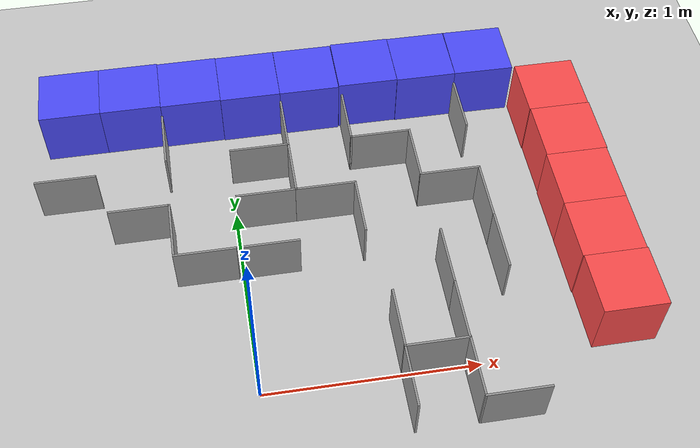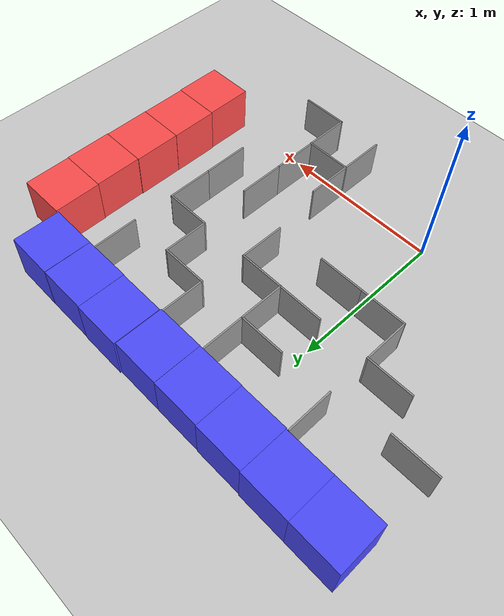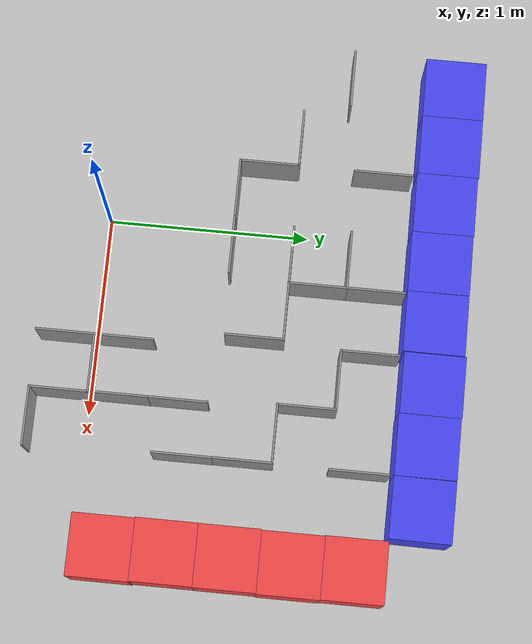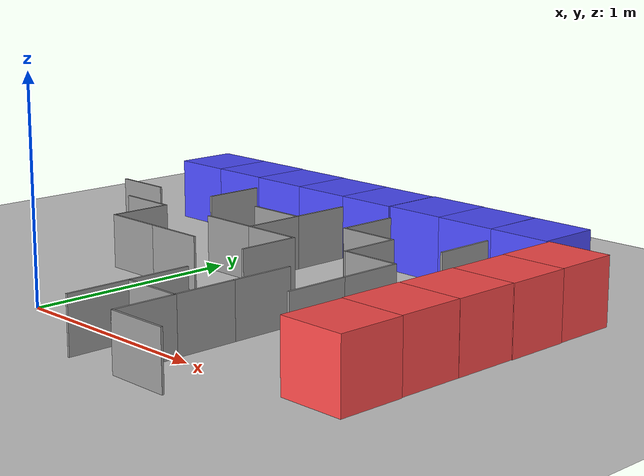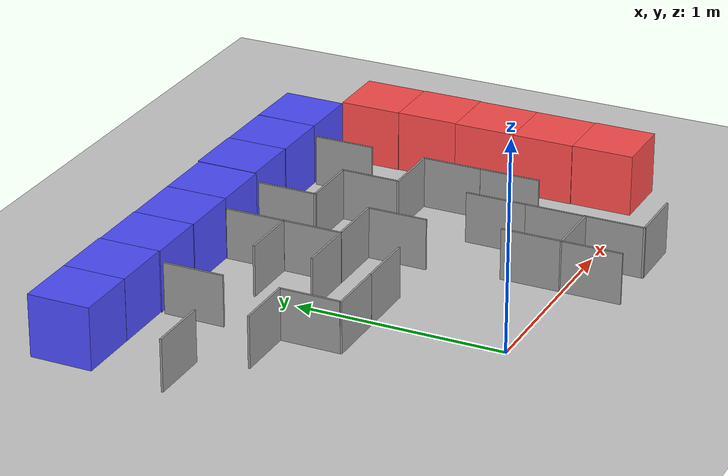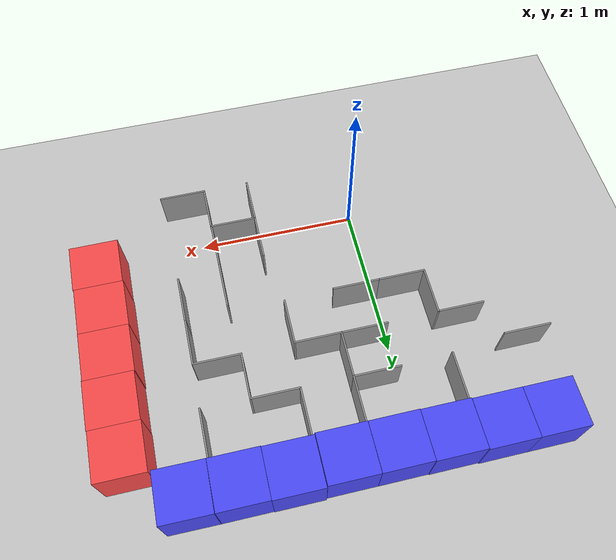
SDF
<sdf version="1.6">
 <world name="default">
  <model name="ground_plane">
   <static>1</static>
   <link name="link">
    <collision name="collision">
     <geometry><plane><normal>0 0 1</normal><size>100 100</size></plane></geometry>
     <surface><friction><ode><mu>100</mu><mu2>50</mu2></ode></friction></surface>
    </collision>
    <visual name="visual">
     <cast_shadows>0</cast_shadows>
     <geometry><plane><normal>0 0 1</normal><size>100 100</size></plane></geometry>
     <material>
      <script><uri>file://media/materials/scripts/gazebo.material</uri><name>Gazebo/Grey</name></script>
     </material>
    </visual>
   </link>
  </model>
  <model name="Box_Red">
   <link name="link_0">
    <inertial>
     <mass>1</mass>
     <inertia>
      <ixx>0.166667</ixx>
      <ixy>0</ixy>
      <ixz>0</ixz>
      <iyy>0.166667</iyy>
      <iyz>0</iyz>
      <izz>0.166667</izz>
     </inertia>
    </inertial>
    <visual name="visual">
     <geometry><box><size>0.3 0.3 0.3</size></box></geometry>
     <material>
      <lighting>1</lighting>
      <script><uri>file://media/materials/scripts/gazebo.material</uri><name>Gazebo/Grey</name></script>
      <ambient>1 0.3 0.3 1</ambient>
      <diffuse>0.7 0.7 0.7 1</diffuse>
      <specular>0.01 0.01 0.01 1</specular>
      <emissive>0 0 0 1</emissive>
      <shader type="vertex"><normal_map>__default__</normal_map></shader>
     </material>
    </visual>
    <collision name="collision">
     <geometry><box><size>0.3 0.3 0.3</size></box></geometry>
     <surface>
      <friction>
       <ode><mu>1</mu><mu2>1</mu2><fdir1>0 0 0</fdir1><slip1>0</slip1><slip2>0</slip2></ode>
       <torsional>
        <coefficient>1</coefficient>
        <patch_radius>0</patch_radius>
        <surface_radius>0</surface_radius>
        <use_patch_radius>1</use_patch_radius>
        <ode><slip>0</slip></ode>
       </torsional>
      </friction>
      <bounce><restitution_coefficient>0</restitution_coefficient><threshold>1e+06</threshold></bounce>
      <contact>
       <collide_without_contact>0</collide_without_contact>
       <collide_without_contact_bitmask>1</collide_without_contact_bitmask>
       <collide_bitmask>1</collide_bitmask>
       <ode>
        <soft_cfm>0</soft_cfm>
        <soft_erp>0.2</soft_erp>
        <kp>1e+13</kp>
        <kd>1</kd>
        <max_vel>0.01</max_vel>
        <min_depth>0</min_depth>
       </ode>
       <bullet>
        <split_impulse>1</split_impulse>
        <split_impulse_penetration_threshold>-0.01</split_impulse_penetration_threshold>
        <soft_cfm>0</soft_cfm>
        <soft_erp>0.2</soft_erp>
        <kp>1e+13</kp>
        <kd>1</kd>
       </bullet>
      </contact>
     </surface>
    </collision>
   </link>
   <static>0</static>
   <pose>1.65631 1.36035 0.15 0 -0 0.000209</pose>
  </model>
  <model name="Box_Red_clone">
   <link name="link_0">
    <inertial>
     <mass>1</mass>
     <inertia>
      <ixx>0.166667</ixx>
      <ixy>0</ixy>
      <ixz>0</ixz>
      <iyy>0.166667</iyy>
      <iyz>0</iyz>
      <izz>0.166667</izz>
     </inertia>
    </inertial>
    <visual name="visual">
     <geometry><box><size>0.3 0.3 0.3</size></box></geometry>
     <material>
      <lighting>1</lighting>
      <script><uri>file://media/materials/scripts/gazebo.material</uri><name>Gazebo/Grey</name></script>
      <ambient>1 0.3 0.3 1</ambient>
      <diffuse>0.7 0.7 0.7 1</diffuse>
      <specular>0.01 0.01 0.01 1</specular>
      <emissive>0 0 0 1</emissive>
      <shader type="vertex"><normal_map>__default__</normal_map></shader>
     </material>
    </visual>
    <collision name="collision">
     <geometry><box><size>0.3 0.3 0.3</size></box></geometry>
     <surface>
      <friction>
       <ode><mu>1</mu><mu2>1</mu2><fdir1>0 0 0</fdir1><slip1>0</slip1><slip2>0</slip2></ode>
       <torsional>
        <coefficient>1</coefficient>
        <patch_radius>0</patch_radius>
        <surface_radius>0</surface_radius>
        <use_patch_radius>1</use_patch_radius>
        <ode><slip>0</slip></ode>
       </torsional>
      </friction>
      <bounce><restitution_coefficient>0</restitution_coefficient><threshold>1e+06</threshold></bounce>
      <contact>
       <collide_without_contact>0</collide_without_contact>
       <collide_without_contact_bitmask>1</collide_without_contact_bitmask>
       <collide_bitmask>1</collide_bitmask>
       <ode>
        <soft_cfm>0</soft_cfm>
        <soft_erp>0.2</soft_erp>
        <kp>1e+13</kp>
        <kd>1</kd>
        <max_vel>0.01</max_vel>
        <min_depth>0</min_depth>
       </ode>
       <bullet>
        <split_impulse>1</split_impulse>
        <split_impulse_penetration_threshold>-0.01</split_impulse_penetration_threshold>
        <soft_cfm>0</soft_cfm>
        <soft_erp>0.2</soft_erp>
        <kp>1e+13</kp>
        <kd>1</kd>
       </bullet>
      </contact>
     </surface>
    </collision>
   </link>
   <static>0</static>
   <pose>1.6595 1.06034 0.15 0 -0 0.000177</pose>
  </model>
  <model name="Box_Red_clone_0">
   <link name="link_0">
    <inertial>
     <mass>1</mass>
     <inertia>
      <ixx>0.166667</ixx>
      <ixy>0</ixy>
      <ixz>0</ixz>
      <iyy>0.166667</iyy>
      <iyz>0</iyz>
      <izz>0.166667</izz>
     </inertia>
    </inertial>
    <visual name="visual">
     <geometry><box><size>0.3 0.3 0.3</size></box></geometry>
     <material>
      <lighting>1</lighting>
      <script><uri>file://media/materials/scripts/gazebo.material</uri><name>Gazebo/Grey</name></script>
      <ambient>1 0.3 0.3 1</ambient>
      <diffuse>0.7 0.7 0.7 1</diffuse>
      <specular>0.01 0.01 0.01 1</specular>
      <emissive>0 0 0 1</emissive>
      <shader type="vertex"><normal_map>__default__</normal_map></shader>
     </material>
    </visual>
    <collision name="collision">
     <geometry><box><size>0.3 0.3 0.3</size></box></geometry>
     <surface>
      <friction>
       <ode><mu>1</mu><mu2>1</mu2><fdir1>0 0 0</fdir1><slip1>0</slip1><slip2>0</slip2></ode>
       <torsional>
        <coefficient>1</coefficient>
        <patch_radius>0</patch_radius>
        <surface_radius>0</surface_radius>
        <use_patch_radius>1</use_patch_radius>
        <ode><slip>0</slip></ode>
       </torsional>
      </friction>
      <bounce><restitution_coefficient>0</restitution_coefficient><threshold>1e+06</threshold></bounce>
      <contact>
       <collide_without_contact>0</collide_without_contact>
       <collide_without_contact_bitmask>1</collide_without_contact_bitmask>
       <collide_bitmask>1</collide_bitmask>
       <ode>
        <soft_cfm>0</soft_cfm>
        <soft_erp>0.2</soft_erp>
        <kp>1e+13</kp>
        <kd>1</kd>
        <max_vel>0.01</max_vel>
        <min_depth>0</min_depth>
       </ode>
       <bullet>
        <split_impulse>1</split_impulse>
        <split_impulse_penetration_threshold>-0.01</split_impulse_penetration_threshold>
        <soft_cfm>0</soft_cfm>
        <soft_erp>0.2</soft_erp>
        <kp>1e+13</kp>
        <kd>1</kd>
       </bullet>
      </contact>
     </surface>
    </collision>
   </link>
   <static>0</static>
   <pose>1.65603 0.760319 0.15 0 -0 0.000183</pose>
  </model>
  <model name="Box_Red_clone_1">
   <link name="link_0">
    <inertial>
     <mass>1</mass>
     <inertia>
      <ixx>0.166667</ixx>
      <ixy>0</ixy>
      <ixz>0</ixz>
      <iyy>0.166667</iyy>
      <iyz>0</iyz>
      <izz>0.166667</izz>
     </inertia>
    </inertial>
    <visual name="visual">
     <geometry><box><size>0.3 0.3 0.3</size></box></geometry>
     <material>
      <lighting>1</lighting>
      <script><uri>file://media/materials/scripts/gazebo.material</uri><name>Gazebo/Grey</name></script>
      <ambient>1 0.3 0.3 1</ambient>
      <diffuse>0.7 0.7 0.7 1</diffuse>
      <specular>0.01 0.01 0.01 1</specular>
      <emissive>0 0 0 1</emissive>
      <shader type="vertex"><normal_map>__default__</normal_map></shader>
     </material>
    </visual>
    <collision name="collision">
     <geometry><box><size>0.3 0.3 0.3</size></box></geometry>
     <surface>
      <friction>
       <ode><mu>1</mu><mu2>1</mu2><fdir1>0 0 0</fdir1><slip1>0</slip1><slip2>0</slip2></ode>
       <torsional>
        <coefficient>1</coefficient>
        <patch_radius>0</patch_radius>
        <surface_radius>0</surface_radius>
        <use_patch_radius>1</use_patch_radius>
        <ode><slip>0</slip></ode>
       </torsional>
      </friction>
      <bounce><restitution_coefficient>0</restitution_coefficient><threshold>1e+06</threshold></bounce>
      <contact>
       <collide_without_contact>0</collide_without_contact>
       <collide_without_contact_bitmask>1</collide_without_contact_bitmask>
       <collide_bitmask>1</collide_bitmask>
       <ode>
        <soft_cfm>0</soft_cfm>
        <soft_erp>0.2</soft_erp>
        <kp>1e+13</kp>
        <kd>1</kd>
        <max_vel>0.01</max_vel>
        <min_depth>0</min_depth>
       </ode>
       <bullet>
        <split_impulse>1</split_impulse>
        <split_impulse_penetration_threshold>-0.01</split_impulse_penetration_threshold>
        <soft_cfm>0</soft_cfm>
        <soft_erp>0.2</soft_erp>
        <kp>1e+13</kp>
        <kd>1</kd>
       </bullet>
      </contact>
     </surface>
    </collision>
   </link>
   <static>0</static>
   <pose>1.65531 0.460313 0.15 0 -0 0.000186</pose>
  </model>
  <model name="Box_Red_clone_2">
   <link name="link_0">
    <inertial>
     <mass>1</mass>
     <inertia>
      <ixx>0.166667</ixx>
      <ixy>0</ixy>
      <ixz>0</ixz>
      <iyy>0.166667</iyy>
      <iyz>0</iyz>
      <izz>0.166667</izz>
     </inertia>
    </inertial>
    <visual name="visual">
     <geometry><box><size>0.3 0.3 0.3</size></box></geometry>
     <material>
      <lighting>1</lighting>
      <script><uri>file://media/materials/scripts/gazebo.material</uri><name>Gazebo/Grey</name></script>
      <ambient>1 0.3 0.3 1</ambient>
      <diffuse>0.7 0.7 0.7 1</diffuse>
      <specular>0.01 0.01 0.01 1</specular>
      <emissive>0 0 0 1</emissive>
      <shader type="vertex"><normal_map>__default__</normal_map></shader>
     </material>
    </visual>
    <collision name="collision">
     <geometry><box><size>0.3 0.3 0.3</size></box></geometry>
     <surface>
      <friction>
       <ode><mu>1</mu><mu2>1</mu2><fdir1>0 0 0</fdir1><slip1>0</slip1><slip2>0</slip2></ode>
       <torsional>
        <coefficient>1</coefficient>
        <patch_radius>0</patch_radius>
        <surface_radius>0</surface_radius>
        <use_patch_radius>1</use_patch_radius>
        <ode><slip>0</slip></ode>
       </torsional>
      </friction>
      <bounce><restitution_coefficient>0</restitution_coefficient><threshold>1e+06</threshold></bounce>
      <contact>
       <collide_without_contact>0</collide_without_contact>
       <collide_without_contact_bitmask>1</collide_without_contact_bitmask>
       <collide_bitmask>1</collide_bitmask>
       <ode>
        <soft_cfm>0</soft_cfm>
        <soft_erp>0.2</soft_erp>
        <kp>1e+13</kp>
        <kd>1</kd>
        <max_vel>0.01</max_vel>
        <min_depth>0</min_depth>
       </ode>
       <bullet>
        <split_impulse>1</split_impulse>
        <split_impulse_penetration_threshold>-0.01</split_impulse_penetration_threshold>
        <soft_cfm>0</soft_cfm>
        <soft_erp>0.2</soft_erp>
        <kp>1e+13</kp>
        <kd>1</kd>
       </bullet>
      </contact>
     </surface>
    </collision>
   </link>
   <static>0</static>
   <pose>1.6595 0.160281 0.15 0 -0 0.000192</pose>
  </model>
  <model name="Box_Blue">
   <link name="link_0">
    <inertial>
     <mass>1</mass>
     <inertia>
      <ixx>0.166667</ixx>
      <ixy>0</ixy>
      <ixz>0</ixz>
      <iyy>0.166667</iyy>
      <iyz>0</iyz>
      <izz>0.166667</izz>
     </inertia>
    </inertial>
    <visual name="visual">
     <geometry><box><size>0.3 0.3 0.3</size></box></geometry>
     <material>
      <lighting>1</lighting>
      <script><uri>file://media/materials/scripts/gazebo.material</uri><name>Gazebo/Grey</name></script>
      <ambient>0.3 0.3 1 1</ambient>
      <diffuse>0.7 0.7 0.7 1</diffuse>
      <specular>0.01 0.01 0.01 1</specular>
      <emissive>0 0 0 1</emissive>
      <shader type="vertex"><normal_map>__default__</normal_map></shader>
     </material>
    </visual>
    <collision name="collision">
     <geometry><box><size>0.3 0.3 0.3</size></box></geometry>
     <surface>
      <friction>
       <ode><mu>1</mu><mu2>1</mu2><fdir1>0 0 0</fdir1><slip1>0</slip1><slip2>0</slip2></ode>
       <torsional>
        <coefficient>1</coefficient>
        <patch_radius>0</patch_radius>
        <surface_radius>0</surface_radius>
        <use_patch_radius>1</use_patch_radius>
        <ode><slip>0</slip></ode>
       </torsional>
      </friction>
      <bounce><restitution_coefficient>0</restitution_coefficient><threshold>1e+06</threshold></bounce>
      <contact>
       <collide_without_contact>0</collide_without_contact>
       <collide_without_contact_bitmask>1</collide_without_contact_bitmask>
       <collide_bitmask>1</collide_bitmask>
       <ode>
        <soft_cfm>0</soft_cfm>
        <soft_erp>0.2</soft_erp>
        <kp>1e+13</kp>
        <kd>1</kd>
        <max_vel>0.01</max_vel>
        <min_depth>0</min_depth>
       </ode>
       <bullet>
        <split_impulse>1</split_impulse>
        <split_impulse_penetration_threshold>-0.01</split_impulse_penetration_threshold>
        <soft_cfm>0</soft_cfm>
        <soft_erp>0.2</soft_erp>
        <kp>1e+13</kp>
        <kd>1</kd>
       </bullet>
      </contact>
     </surface>
    </collision>
   </link>
   <static>0</static>
   <pose>1.34503 1.6566 0.15 0 -0 -0.010007</pose>
  </model>
  <model name="Box_Blue_clone">
   <link name="link_0">
    <inertial>
     <mass>1</mass>
     <inertia>
      <ixx>0.166667</ixx>
      <ixy>0</ixy>
      <ixz>0</ixz>
      <iyy>0.166667</iyy>
      <iyz>0</iyz>
      <izz>0.166667</izz>
     </inertia>
    </inertial>
    <visual name="visual">
     <geometry><box><size>0.3 0.3 0.3</size></box></geometry>
     <material>
      <lighting>1</lighting>
      <script><uri>file://media/materials/scripts/gazebo.material</uri><name>Gazebo/Grey</name></script>
      <ambient>0.3 0.3 1 1</ambient>
      <diffuse>0.7 0.7 0.7 1</diffuse>
      <specular>0.01 0.01 0.01 1</specular>
      <emissive>0 0 0 1</emissive>
      <shader type="vertex"><normal_map>__default__</normal_map></shader>
     </material>
    </visual>
    <collision name="collision">
     <geometry><box><size>0.3 0.3 0.3</size></box></geometry>
     <surface>
      <friction>
       <ode><mu>1</mu><mu2>1</mu2><fdir1>0 0 0</fdir1><slip1>0</slip1><slip2>0</slip2></ode>
       <torsional>
        <coefficient>1</coefficient>
        <patch_radius>0</patch_radius>
        <surface_radius>0</surface_radius>
        <use_patch_radius>1</use_patch_radius>
        <ode><slip>0</slip></ode>
       </torsional>
      </friction>
      <bounce><restitution_coefficient>0</restitution_coefficient><threshold>1e+06</threshold></bounce>
      <contact>
       <collide_without_contact>0</collide_without_contact>
       <collide_without_contact_bitmask>1</collide_without_contact_bitmask>
       <collide_bitmask>1</collide_bitmask>
       <ode>
        <soft_cfm>0</soft_cfm>
        <soft_erp>0.2</soft_erp>
        <kp>1e+13</kp>
        <kd>1</kd>
        <max_vel>0.01</max_vel>
        <min_depth>0</min_depth>
       </ode>
       <bullet>
        <split_impulse>1</split_impulse>
        <split_impulse_penetration_threshold>-0.01</split_impulse_penetration_threshold>
        <soft_cfm>0</soft_cfm>
        <soft_erp>0.2</soft_erp>
        <kp>1e+13</kp>
        <kd>1</kd>
       </bullet>
      </contact>
     </surface>
    </collision>
   </link>
   <static>0</static>
   <pose>1.04383 1.65841 0.15 0 -0 -0.002032</pose>
  </model>
  <model name="Box_Blue_clone_0">
   <link name="link_0">
    <inertial>
     <mass>1</mass>
     <inertia>
      <ixx>0.166667</ixx>
      <ixy>0</ixy>
      <ixz>0</ixz>
      <iyy>0.166667</iyy>
      <iyz>0</iyz>
      <izz>0.166667</izz>
     </inertia>
    </inertial>
    <visual name="visual">
     <geometry><box><size>0.3 0.3 0.3</size></box></geometry>
     <material>
      <lighting>1</lighting>
      <script><uri>file://media/materials/scripts/gazebo.material</uri><name>Gazebo/Grey</name></script>
      <ambient>0.3 0.3 1 1</ambient>
      <diffuse>0.7 0.7 0.7 1</diffuse>
      <specular>0.01 0.01 0.01 1</specular>
      <emissive>0 0 0 1</emissive>
      <shader type="vertex"><normal_map>__default__</normal_map></shader>
     </material>
    </visual>
    <collision name="collision">
     <geometry><box><size>0.3 0.3 0.3</size></box></geometry>
     <surface>
      <friction>
       <ode><mu>1</mu><mu2>1</mu2><fdir1>0 0 0</fdir1><slip1>0</slip1><slip2>0</slip2></ode>
       <torsional>
        <coefficient>1</coefficient>
        <patch_radius>0</patch_radius>
        <surface_radius>0</surface_radius>
        <use_patch_radius>1</use_patch_radius>
        <ode><slip>0</slip></ode>
       </torsional>
      </friction>
      <bounce><restitution_coefficient>0</restitution_coefficient><threshold>1e+06</threshold></bounce>
      <contact>
       <collide_without_contact>0</collide_without_contact>
       <collide_without_contact_bitmask>1</collide_without_contact_bitmask>
       <collide_bitmask>1</collide_bitmask>
       <ode>
        <soft_cfm>0</soft_cfm>
        <soft_erp>0.2</soft_erp>
        <kp>1e+13</kp>
        <kd>1</kd>
        <max_vel>0.01</max_vel>
        <min_depth>0</min_depth>
       </ode>
       <bullet>
        <split_impulse>1</split_impulse>
        <split_impulse_penetration_threshold>-0.01</split_impulse_penetration_threshold>
        <soft_cfm>0</soft_cfm>
        <soft_erp>0.2</soft_erp>
        <kp>1e+13</kp>
        <kd>1</kd>
       </bullet>
      </contact>
     </surface>
    </collision>
   </link>
   <static>0</static>
   <pose>0.743635 1.66222 0.15 0 -0 -0.003387</pose>
  </model>
  <model name="Box_Blue_clone_1">
   <link name="link_0">
    <inertial>
     <mass>1</mass>
     <inertia>
      <ixx>0.166667</ixx>
      <ixy>0</ixy>
      <ixz>0</ixz>
      <iyy>0.166667</iyy>
      <iyz>0</iyz>
      <izz>0.166667</izz>
     </inertia>
    </inertial>
    <visual name="visual">
     <geometry><box><size>0.3 0.3 0.3</size></box></geometry>
     <material>
      <lighting>1</lighting>
      <script><uri>file://media/materials/scripts/gazebo.material</uri><name>Gazebo/Grey</name></script>
      <ambient>0.3 0.3 1 1</ambient>
      <diffuse>0.7 0.7 0.7 1</diffuse>
      <specular>0.01 0.01 0.01 1</specular>
      <emissive>0 0 0 1</emissive>
      <shader type="vertex"><normal_map>__default__</normal_map></shader>
     </material>
    </visual>
    <collision name="collision">
     <geometry><box><size>0.3 0.3 0.3</size></box></geometry>
     <surface>
      <friction>
       <ode><mu>1</mu><mu2>1</mu2><fdir1>0 0 0</fdir1><slip1>0</slip1><slip2>0</slip2></ode>
       <torsional>
        <coefficient>1</coefficient>
        <patch_radius>0</patch_radius>
        <surface_radius>0</surface_radius>
        <use_patch_radius>1</use_patch_radius>
        <ode><slip>0</slip></ode>
       </torsional>
      </friction>
      <bounce><restitution_coefficient>0</restitution_coefficient><threshold>1e+06</threshold></bounce>
      <contact>
       <collide_without_contact>0</collide_without_contact>
       <collide_without_contact_bitmask>1</collide_without_contact_bitmask>
       <collide_bitmask>1</collide_bitmask>
       <ode>
        <soft_cfm>0</soft_cfm>
        <soft_erp>0.2</soft_erp>
        <kp>1e+13</kp>
        <kd>1</kd>
        <max_vel>0.01</max_vel>
        <min_depth>0</min_depth>
       </ode>
       <bullet>
        <split_impulse>1</split_impulse>
        <split_impulse_penetration_threshold>-0.01</split_impulse_penetration_threshold>
        <soft_cfm>0</soft_cfm>
        <soft_erp>0.2</soft_erp>
        <kp>1e+13</kp>
        <kd>1</kd>
       </bullet>
      </contact>
     </surface>
    </collision>
   </link>
   <static>0</static>
   <pose>0.440726 1.65509 0.15 0 -0 -0.000113</pose>
  </model>
  <model name="Box_Blue_clone_2">
   <link name="link_0">
    <inertial>
     <mass>1</mass>
     <inertia>
      <ixx>0.166667</ixx>
      <ixy>0</ixy>
      <ixz>0</ixz>
      <iyy>0.166667</iyy>
      <iyz>0</iyz>
      <izz>0.166667</izz>
     </inertia>
    </inertial>
    <visual name="visual">
     <geometry><box><size>0.3 0.3 0.3</size></box></geometry>
     <material>
      <lighting>1</lighting>
      <script><uri>file://media/materials/scripts/gazebo.material</uri><name>Gazebo/Grey</name></script>
      <ambient>0.3 0.3 1 1</ambient>
      <diffuse>0.7 0.7 0.7 1</diffuse>
      <specular>0.01 0.01 0.01 1</specular>
      <emissive>0 0 0 1</emissive>
      <shader type="vertex"><normal_map>__default__</normal_map></shader>
     </material>
    </visual>
    <collision name="collision">
     <geometry><box><size>0.3 0.3 0.3</size></box></geometry>
     <surface>
      <friction>
       <ode><mu>1</mu><mu2>1</mu2><fdir1>0 0 0</fdir1><slip1>0</slip1><slip2>0</slip2></ode>
       <torsional>
        <coefficient>1</coefficient>
        <patch_radius>0</patch_radius>
        <surface_radius>0</surface_radius>
        <use_patch_radius>1</use_patch_radius>
        <ode><slip>0</slip></ode>
       </torsional>
      </friction>
      <bounce><restitution_coefficient>0</restitution_coefficient><threshold>1e+06</threshold></bounce>
      <contact>
       <collide_without_contact>0</collide_without_contact>
       <collide_without_contact_bitmask>1</collide_without_contact_bitmask>
       <collide_bitmask>1</collide_bitmask>
       <ode>
        <soft_cfm>0</soft_cfm>
        <soft_erp>0.2</soft_erp>
        <kp>1e+13</kp>
        <kd>1</kd>
        <max_vel>0.01</max_vel>
        <min_depth>0</min_depth>
       </ode>
       <bullet>
        <split_impulse>1</split_impulse>
        <split_impulse_penetration_threshold>-0.01</split_impulse_penetration_threshold>
        <soft_cfm>0</soft_cfm>
        <soft_erp>0.2</soft_erp>
        <kp>1e+13</kp>
        <kd>1</kd>
       </bullet>
      </contact>
     </surface>
    </collision>
   </link>
   <static>0</static>
   <pose>0.140372 1.65549 0.15 0 -0 0.002233</pose>
  </model>
  <model name="Box_Blue_clone_3">
   <link name="link_0">
    <inertial>
     <mass>1</mass>
     <inertia>
      <ixx>0.166667</ixx>
      <ixy>0</ixy>
      <ixz>0</ixz>
      <iyy>0.166667</iyy>
      <iyz>0</iyz>
      <izz>0.166667</izz>
     </inertia>
    </inertial>
    <visual name="visual">
     <geometry><box><size>0.3 0.3 0.3</size></box></geometry>
     <material>
      <lighting>1</lighting>
      <script><uri>file://media/materials/scripts/gazebo.material</uri><name>Gazebo/Grey</name></script>
      <ambient>0.3 0.3 1 1</ambient>
      <diffuse>0.7 0.7 0.7 1</diffuse>
      <specular>0.01 0.01 0.01 1</specular>
      <emissive>0 0 0 1</emissive>
      <shader type="vertex"><normal_map>__default__</normal_map></shader>
     </material>
    </visual>
    <collision name="collision">
     <geometry><box><size>0.3 0.3 0.3</size></box></geometry>
     <surface>
      <friction>
       <ode><mu>1</mu><mu2>1</mu2><fdir1>0 0 0</fdir1><slip1>0</slip1><slip2>0</slip2></ode>
       <torsional>
        <coefficient>1</coefficient>
        <patch_radius>0</patch_radius>
        <surface_radius>0</surface_radius>
        <use_patch_radius>1</use_patch_radius>
        <ode><slip>0</slip></ode>
       </torsional>
      </friction>
      <bounce><restitution_coefficient>0</restitution_coefficient><threshold>1e+06</threshold></bounce>
      <contact>
       <collide_without_contact>0</collide_without_contact>
       <collide_without_contact_bitmask>1</collide_without_contact_bitmask>
       <collide_bitmask>1</collide_bitmask>
       <ode>
        <soft_cfm>0</soft_cfm>
        <soft_erp>0.2</soft_erp>
        <kp>1e+13</kp>
        <kd>1</kd>
        <max_vel>0.01</max_vel>
        <min_depth>0</min_depth>
       </ode>
       <bullet>
        <split_impulse>1</split_impulse>
        <split_impulse_penetration_threshold>-0.01</split_impulse_penetration_threshold>
        <soft_cfm>0</soft_cfm>
        <soft_erp>0.2</soft_erp>
        <kp>1e+13</kp>
        <kd>1</kd>
       </bullet>
      </contact>
     </surface>
    </collision>
   </link>
   <static>0</static>
   <pose>-0.159695 1.65795 0.15 0 -0 0.001827</pose>
  </model>
  <model name="Box_Blue_clone_4">
   <link name="link_0">
    <inertial>
     <mass>1</mass>
     <inertia>
      <ixx>0.166667</ixx>
      <ixy>0</ixy>
      <ixz>0</ixz>
      <iyy>0.166667</iyy>
      <iyz>0</iyz>
      <izz>0.166667</izz>
     </inertia>
    </inertial>
    <visual name="visual">
     <geometry><box><size>0.3 0.3 0.3</size></box></geometry>
     <material>
      <lighting>1</lighting>
      <script><uri>file://media/materials/scripts/gazebo.material</uri><name>Gazebo/Grey</name></script>
      <ambient>0.3 0.3 1 1</ambient>
      <diffuse>0.7 0.7 0.7 1</diffuse>
      <specular>0.01 0.01 0.01 1</specular>
      <emissive>0 0 0 1</emissive>
      <shader type="vertex"><normal_map>__default__</normal_map></shader>
     </material>
    </visual>
    <collision name="collision">
     <geometry><box><size>0.3 0.3 0.3</size></box></geometry>
     <surface>
      <friction>
       <ode><mu>1</mu><mu2>1</mu2><fdir1>0 0 0</fdir1><slip1>0</slip1><slip2>0</slip2></ode>
       <torsional>
        <coefficient>1</coefficient>
        <patch_radius>0</patch_radius>
        <surface_radius>0</surface_radius>
        <use_patch_radius>1</use_patch_radius>
        <ode><slip>0</slip></ode>
       </torsional>
      </friction>
      <bounce><restitution_coefficient>0</restitution_coefficient><threshold>1e+06</threshold></bounce>
      <contact>
       <collide_without_contact>0</collide_without_contact>
       <collide_without_contact_bitmask>1</collide_without_contact_bitmask>
       <collide_bitmask>1</collide_bitmask>
       <ode>
        <soft_cfm>0</soft_cfm>
        <soft_erp>0.2</soft_erp>
        <kp>1e+13</kp>
        <kd>1</kd>
        <max_vel>0.01</max_vel>
        <min_depth>0</min_depth>
       </ode>
       <bullet>
        <split_impulse>1</split_impulse>
        <split_impulse_penetration_threshold>-0.01</split_impulse_penetration_threshold>
        <soft_cfm>0</soft_cfm>
        <soft_erp>0.2</soft_erp>
        <kp>1e+13</kp>
        <kd>1</kd>
       </bullet>
      </contact>
     </surface>
    </collision>
   </link>
   <static>0</static>
   <pose>-0.459753 1.66237 0.15 0 -0 0.0015</pose>
  </model>
  <model name="Box_Blue_clone_5">
   <link name="link_0">
    <inertial>
     <mass>1</mass>
     <inertia>
      <ixx>0.166667</ixx>
      <ixy>0</ixy>
      <ixz>0</ixz>
      <iyy>0.166667</iyy>
      <iyz>0</iyz>
      <izz>0.166667</izz>
     </inertia>
    </inertial>
    <visual name="visual">
     <geometry><box><size>0.3 0.3 0.3</size></box></geometry>
     <material>
      <lighting>1</lighting>
      <script><uri>file://media/materials/scripts/gazebo.material</uri><name>Gazebo/Grey</name></script>
      <ambient>0.3 0.3 1 1</ambient>
      <diffuse>0.7 0.7 0.7 1</diffuse>
      <specular>0.01 0.01 0.01 1</specular>
      <emissive>0 0 0 1</emissive>
      <shader type="vertex"><normal_map>__default__</normal_map></shader>
     </material>
    </visual>
    <collision name="collision">
     <geometry><box><size>0.3 0.3 0.3</size></box></geometry>
     <surface>
      <friction>
       <ode><mu>1</mu><mu2>1</mu2><fdir1>0 0 0</fdir1><slip1>0</slip1><slip2>0</slip2></ode>
       <torsional>
        <coefficient>1</coefficient>
        <patch_radius>0</patch_radius>
        <surface_radius>0</surface_radius>
        <use_patch_radius>1</use_patch_radius>
        <ode><slip>0</slip></ode>
       </torsional>
      </friction>
      <bounce><restitution_coefficient>0</restitution_coefficient><threshold>1e+06</threshold></bounce>
      <contact>
       <collide_without_contact>0</collide_without_contact>
       <collide_without_contact_bitmask>1</collide_without_contact_bitmask>
       <collide_bitmask>1</collide_bitmask>
       <ode>
        <soft_cfm>0</soft_cfm>
        <soft_erp>0.2</soft_erp>
        <kp>1e+13</kp>
        <kd>1</kd>
        <max_vel>0.01</max_vel>
        <min_depth>0</min_depth>
       </ode>
       <bullet>
        <split_impulse>1</split_impulse>
        <split_impulse_penetration_threshold>-0.01</split_impulse_penetration_threshold>
        <soft_cfm>0</soft_cfm>
        <soft_erp>0.2</soft_erp>
        <kp>1e+13</kp>
        <kd>1</kd>
       </bullet>
      </contact>
     </surface>
    </collision>
   </link>
   <static>0</static>
   <pose>-0.759764 1.66238 0.15 0 -0 0.001446</pose>
  </model>
  <model name="Maze_I_H_clone">
   <pose>1.18792 1.34673 0 0 -0 0</pose>
   <link name="Wall_0">
    <collision name="Wall_0_Collision">
     <geometry><box><size>0.294 0.01 0.25</size></box></geometry>
     <pose>0 0 0.125 0 -0 0</pose>
    </collision>
    <visual name="Wall_0_Visual">
     <pose>0 0 0.125 0 -0 0</pose>
     <geometry><box><size>0.294 0.01 0.25</size></box></geometry>
     <material>
      <script><uri>file://media/materials/scripts/gazebo.material</uri><name>Gazebo/Grey</name></script>
      <ambient>1 1 1 1</ambient>
     </material>
     <meta><layer>0</layer></meta>
    </visual>
    <pose>0 0 0 0 -0 1.5708</pose>
   </link>
   <static>1</static>
  </model>
  <model name="Maze_L_RB_clone">
   <pose>0.748164 1.35333 0 0 -0 0</pose>
   <link name="Wall_0">
    <collision name="Wall_0_Collision">
     <geometry><box><size>0.294 0.01 0.25</size></box></geometry>
     <pose>0 0 0.125 0 -0 0</pose>
    </collision>
    <visual name="Wall_0_Visual">
     <pose>0 0 0.125 0 -0 0</pose>
     <geometry><box><size>0.294 0.01 0.25</size></box></geometry>
     <material>
      <script><uri>file://media/materials/scripts/gazebo.material</uri><name>Gazebo/Grey</name></script>
      <ambient>1 1 1 1</ambient>
     </material>
     <meta><layer>0</layer></meta>
    </visual>
    <pose>0 -0.142 0 0 -0 0</pose>
   </link>
   <link name="Wall_2">
    <collision name="Wall_2_Collision">
     <geometry><box><size>0.294 0.01 0.25</size></box></geometry>
     <pose>0 0 0.125 0 -0 0</pose>
    </collision>
    <visual name="Wall_2_Visual">
     <pose>0 0 0.125 0 -0 0</pose>
     <geometry><box><size>0.294 0.01 0.25</size></box></geometry>
     <material>
      <script><uri>file://media/materials/scripts/gazebo.material</uri><name>Gazebo/Grey</name></script>
      <ambient>1 1 1 1</ambient>
     </material>
     <meta><layer>0</layer></meta>
    </visual>
    <pose>-0.142 0 0 0 -0 1.5708</pose>
   </link>
   <static>1</static>
  </model>
  <model name="Maze_L_RB_clone_0">
   <pose>1.03964 1.06941 0 0 -0 0</pose>
   <link name="Wall_0">
    <collision name="Wall_0_Collision">
     <geometry><box><size>0.294 0.01 0.25</size></box></geometry>
     <pose>0 0 0.125 0 -0 0</pose>
    </collision>
    <visual name="Wall_0_Visual">
     <pose>0 0 0.125 0 -0 0</pose>
     <geometry><box><size>0.294 0.01 0.25</size></box></geometry>
     <material>
      <script><uri>file://media/materials/scripts/gazebo.material</uri><name>Gazebo/Grey</name></script>
      <ambient>1 1 1 1</ambient>
     </material>
     <meta><layer>0</layer></meta>
    </visual>
    <pose>0 -0.142 0 0 -0 0</pose>
   </link>
   <link name="Wall_2">
    <collision name="Wall_2_Collision">
     <geometry><box><size>0.294 0.01 0.25</size></box></geometry>
     <pose>0 0 0.125 0 -0 0</pose>
    </collision>
    <visual name="Wall_2_Visual">
     <pose>0 0 0.125 0 -0 0</pose>
     <geometry><box><size>0.294 0.01 0.25</size></box></geometry>
     <material>
      <script><uri>file://media/materials/scripts/gazebo.material</uri><name>Gazebo/Grey</name></script>
      <ambient>1 1 1 1</ambient>
     </material>
     <meta><layer>0</layer></meta>
    </visual>
    <pose>-0.142 0 0 0 -0 1.5708</pose>
   </link>
   <static>1</static>
  </model>
  <model name="Maze_I_H_clone_0">
   <pose>1.18406 0.784556 0 0 -0 0</pose>
   <link name="Wall_0">
    <collision name="Wall_0_Collision">
     <geometry><box><size>0.294 0.01 0.25</size></box></geometry>
     <pose>0 0 0.125 0 -0 0</pose>
    </collision>
    <visual name="Wall_0_Visual">
     <pose>0 0 0.125 0 -0 0</pose>
     <geometry><box><size>0.294 0.01 0.25</size></box></geometry>
     <material>
      <script><uri>file://media/materials/scripts/gazebo.material</uri><name>Gazebo/Grey</name></script>
      <ambient>1 1 1 1</ambient>
     </material>
     <meta><layer>0</layer></meta>
    </visual>
    <pose>0 0 0 0 -0 1.5708</pose>
   </link>
   <static>1</static>
  </model>
  <model name="Maze_I_H_clone_1">
   <pose>1.18478 0.490963 0 0 -0 0</pose>
   <link name="Wall_0">
    <collision name="Wall_0_Collision">
     <geometry><box><size>0.294 0.01 0.25</size></box></geometry>
     <pose>0 0 0.125 0 -0 0</pose>
    </collision>
    <visual name="Wall_0_Visual">
     <pose>0 0 0.125 0 -0 0</pose>
     <geometry><box><size>0.294 0.01 0.25</size></box></geometry>
     <material>
      <script><uri>file://media/materials/scripts/gazebo.material</uri><name>Gazebo/Grey</name></script>
      <ambient>1 1 1 1</ambient>
     </material>
     <meta><layer>0</layer></meta>
    </visual>
    <pose>0 0 0 0 -0 1.5708</pose>
   </link>
   <static>1</static>
  </model>
  <model name="Maze_L_RB_clone_1">
   <pose>1.06451 -0.131951 0 0 -0 0</pose>
   <link name="Wall_0">
    <collision name="Wall_0_Collision">
     <geometry><box><size>0.294 0.01 0.25</size></box></geometry>
     <pose>0 0 0.125 0 -0 0</pose>
    </collision>
    <visual name="Wall_0_Visual">
     <pose>0 0 0.125 0 -0 0</pose>
     <geometry><box><size>0.294 0.01 0.25</size></box></geometry>
     <material>
      <script><uri>file://media/materials/scripts/gazebo.material</uri><name>Gazebo/Grey</name></script>
      <ambient>1 1 1 1</ambient>
     </material>
     <meta><layer>0</layer></meta>
    </visual>
    <pose>0 -0.142 0 0 -0 0</pose>
   </link>
   <link name="Wall_2">
    <collision name="Wall_2_Collision">
     <geometry><box><size>0.294 0.01 0.25</size></box></geometry>
     <pose>0 0 0.125 0 -0 0</pose>
    </collision>
    <visual name="Wall_2_Visual">
     <pose>0 0 0.125 0 -0 0</pose>
     <geometry><box><size>0.294 0.01 0.25</size></box></geometry>
     <material>
      <script><uri>file://media/materials/scripts/gazebo.material</uri><name>Gazebo/Grey</name></script>
      <ambient>1 1 1 1</ambient>
     </material>
     <meta><layer>0</layer></meta>
    </visual>
    <pose>-0.142 0 0 0 -0 1.5708</pose>
   </link>
   <static>1</static>
  </model>
  <model name="Maze_I_H_clone_2">
   <pose>0.920533 0.155119 0 0 -0 0</pose>
   <link name="Wall_0">
    <collision name="Wall_0_Collision">
     <geometry><box><size>0.294 0.01 0.25</size></box></geometry>
     <pose>0 0 0.125 0 -0 0</pose>
    </collision>
    <visual name="Wall_0_Visual">
     <pose>0 0 0.125 0 -0 0</pose>
     <geometry><box><size>0.294 0.01 0.25</size></box></geometry>
     <material>
      <script><uri>file://media/materials/scripts/gazebo.material</uri><name>Gazebo/Grey</name></script>
      <ambient>1 1 1 1</ambient>
     </material>
     <meta><layer>0</layer></meta>
    </visual>
    <pose>0 0 0 0 -0 1.5708</pose>
   </link>
   <static>1</static>
  </model>
  <model name="Maze_I_H_clone_3">
   <pose>0.920216 0.446457 0 0 -0 0</pose>
   <link name="Wall_0">
    <collision name="Wall_0_Collision">
     <geometry><box><size>0.294 0.01 0.25</size></box></geometry>
     <pose>0 0 0.125 0 -0 0</pose>
    </collision>
    <visual name="Wall_0_Visual">
     <pose>0 0 0.125 0 -0 0</pose>
     <geometry><box><size>0.294 0.01 0.25</size></box></geometry>
     <material>
      <script><uri>file://media/materials/scripts/gazebo.material</uri><name>Gazebo/Grey</name></script>
      <ambient>1 1 1 1</ambient>
     </material>
     <meta><layer>0</layer></meta>
    </visual>
    <pose>0 0 0 0 -0 1.5708</pose>
   </link>
   <static>1</static>
  </model>
  <model name="Maze_I_H_clone_4">
   <pose>0.637555 0.152365 0 0 -0 0</pose>
   <link name="Wall_0">
    <collision name="Wall_0_Collision">
     <geometry><box><size>0.294 0.01 0.25</size></box></geometry>
     <pose>0 0 0.125 0 -0 0</pose>
    </collision>
    <visual name="Wall_0_Visual">
     <pose>0 0 0.125 0 -0 0</pose>
     <geometry><box><size>0.294 0.01 0.25</size></box></geometry>
     <material>
      <script><uri>file://media/materials/scripts/gazebo.material</uri><name>Gazebo/Grey</name></script>
      <ambient>1 1 1 1</ambient>
     </material>
     <meta><layer>0</layer></meta>
    </visual>
    <pose>0 0 0 0 -0 1.5708</pose>
   </link>
   <static>1</static>
  </model>
  <model name="Maze_L_LB_clone_0">
   <pose>0.778988 -0.132321 0 0 -0 0</pose>
   <link name="Wall_0">
    <collision name="Wall_0_Collision">
     <geometry><box><size>0.294 0.01 0.25</size></box></geometry>
     <pose>0 0 0.125 0 -0 0</pose>
    </collision>
    <visual name="Wall_0_Visual">
     <pose>0 0 0.125 0 -0 0</pose>
     <geometry><box><size>0.294 0.01 0.25</size></box></geometry>
     <material>
      <script><uri>file://media/materials/scripts/gazebo.material</uri><name>Gazebo/Grey</name></script>
      <ambient>1 1 1 1</ambient>
     </material>
     <meta><layer>0</layer></meta>
    </visual>
    <pose>0 0.142 0 0 -0 0</pose>
   </link>
   <link name="Wall_2">
    <collision name="Wall_2_Collision">
     <geometry><box><size>0.294 0.01 0.25</size></box></geometry>
     <pose>0 0 0.125 0 -0 0</pose>
    </collision>
    <visual name="Wall_2_Visual">
     <pose>0 0 0.125 0 -0 0</pose>
     <geometry><box><size>0.294 0.01 0.25</size></box></geometry>
     <material>
      <script><uri>file://media/materials/scripts/gazebo.material</uri><name>Gazebo/Grey</name></script>
      <ambient>1 1 1 1</ambient>
     </material>
     <meta><layer>0</layer></meta>
    </visual>
    <pose>-0.142 0 0 0 0 -1.5708</pose>
   </link>
   <static>1</static>
  </model>
  <model name="Maze_L_RU_clone_0">
   <pose>0.150092 1.3551 0 0 -0 0</pose>
   <link name="Wall_11">
    <collision name="Wall_11_Collision">
     <geometry><box><size>0.294 0.01 0.25</size></box></geometry>
     <pose>0 0 0.125 0 -0 0</pose>
    </collision>
    <visual name="Wall_11_Visual">
     <pose>0 0 0.125 0 -0 0</pose>
     <geometry><box><size>0.294 0.01 0.25</size></box></geometry>
     <material>
      <script><uri>file://media/materials/scripts/gazebo.material</uri><name>Gazebo/Grey</name></script>
      <ambient>1 1 1 1</ambient>
     </material>
     <meta><layer>0</layer></meta>
    </visual>
    <pose>0 -0.142 0 0 -0 0</pose>
   </link>
   <link name="Wall_12">
    <collision name="Wall_12_Collision">
     <geometry><box><size>0.294 0.01 0.25</size></box></geometry>
     <pose>0 0 0.125 0 -0 0</pose>
    </collision>
    <visual name="Wall_12_Visual">
     <pose>0 0 0.125 0 -0 0</pose>
     <geometry><box><size>0.294 0.01 0.25</size></box></geometry>
     <material>
      <script><uri>file://media/materials/scripts/gazebo.material</uri><name>Gazebo/Grey</name></script>
      <ambient>1 1 1 1</ambient>
     </material>
     <meta><layer>0</layer></meta>
    </visual>
    <pose>0.142 0 0 0 -0 1.5708</pose>
   </link>
   <static>1</static>
  </model>
  <model name="Maze_L_RU_clone_1">
   <pose>0.150754 1.0698 0 0 -0 0</pose>
   <link name="Wall_11">
    <collision name="Wall_11_Collision">
     <geometry><box><size>0.294 0.01 0.25</size></box></geometry>
     <pose>0 0 0.125 0 -0 0</pose>
    </collision>
    <visual name="Wall_11_Visual">
     <pose>0 0 0.125 0 -0 0</pose>
     <geometry><box><size>0.294 0.01 0.25</size></box></geometry>
     <material>
      <script><uri>file://media/materials/scripts/gazebo.material</uri><name>Gazebo/Grey</name></script>
      <ambient>1 1 1 1</ambient>
     </material>
     <meta><layer>0</layer></meta>
    </visual>
    <pose>0 -0.142 0 0 -0 0</pose>
   </link>
   <link name="Wall_12">
    <collision name="Wall_12_Collision">
     <geometry><box><size>0.294 0.01 0.25</size></box></geometry>
     <pose>0 0 0.125 0 -0 0</pose>
    </collision>
    <visual name="Wall_12_Visual">
     <pose>0 0 0.125 0 -0 0</pose>
     <geometry><box><size>0.294 0.01 0.25</size></box></geometry>
     <material>
      <script><uri>file://media/materials/scripts/gazebo.material</uri><name>Gazebo/Grey</name></script>
      <ambient>1 1 1 1</ambient>
     </material>
     <meta><layer>0</layer></meta>
    </visual>
    <pose>0.142 0 0 0 -0 1.5708</pose>
   </link>
   <static>1</static>
  </model>
  <model name="Maze_L_LU_clone">
   <pose>0.435895 0.785348 0 0 -0 0</pose>
   <link name="Wall_0">
    <collision name="Wall_0_Collision">
     <geometry><box><size>0.294 0.01 0.25</size></box></geometry>
     <pose>0 0 0.125 0 -0 0</pose>
    </collision>
    <visual name="Wall_0_Visual">
     <pose>0 0 0.125 0 -0 0</pose>
     <geometry><box><size>0.294 0.01 0.25</size></box></geometry>
     <material>
      <script><uri>file://media/materials/scripts/gazebo.material</uri><name>Gazebo/Grey</name></script>
      <ambient>1 1 1 1</ambient>
     </material>
     <meta><layer>0</layer></meta>
    </visual>
    <pose>0 0.142 0 0 -0 3.14159</pose>
   </link>
   <link name="Wall_2">
    <collision name="Wall_2_Collision">
     <geometry><box><size>0.294 0.01 0.25</size></box></geometry>
     <pose>0 0 0.125 0 -0 0</pose>
    </collision>
    <visual name="Wall_2_Visual">
     <pose>0 0 0.125 0 -0 0</pose>
     <geometry><box><size>0.294 0.01 0.25</size></box></geometry>
     <material>
      <script><uri>file://media/materials/scripts/gazebo.material</uri><name>Gazebo/Grey</name></script>
      <ambient>1 1 1 1</ambient>
     </material>
     <meta><layer>0</layer></meta>
    </visual>
    <pose>0.142 0 0 0 0 -1.5708</pose>
   </link>
   <static>1</static>
  </model>
  <model name="Maze_I_H_clone_5">
   <pose>-0.308653 1.3447 0 0 -0 0</pose>
   <link name="Wall_0">
    <collision name="Wall_0_Collision">
     <geometry><box><size>0.294 0.01 0.25</size></box></geometry>
     <pose>0 0 0.125 0 -0 0</pose>
    </collision>
    <visual name="Wall_0_Visual">
     <pose>0 0 0.125 0 -0 0</pose>
     <geometry><box><size>0.294 0.01 0.25</size></box></geometry>
     <material>
      <script><uri>file://media/materials/scripts/gazebo.material</uri><name>Gazebo/Grey</name></script>
      <ambient>1 1 1 1</ambient>
     </material>
     <meta><layer>0</layer></meta>
    </visual>
    <pose>0 0 0 0 -0 1.5708</pose>
   </link>
   <static>1</static>
  </model>
  <model name="Maze_L_LU_clone_1">
   <pose>-0.452385 0.781514 0 0 -0 0</pose>
   <link name="Wall_0">
    <collision name="Wall_0_Collision">
     <geometry><box><size>0.294 0.01 0.25</size></box></geometry>
     <pose>0 0 0.125 0 -0 0</pose>
    </collision>
    <visual name="Wall_0_Visual">
     <pose>0 0 0.125 0 -0 0</pose>
     <geometry><box><size>0.294 0.01 0.25</size></box></geometry>
     <material>
      <script><uri>file://media/materials/scripts/gazebo.material</uri><name>Gazebo/Grey</name></script>
      <ambient>1 1 1 1</ambient>
     </material>
     <meta><layer>0</layer></meta>
    </visual>
    <pose>0 0.142 0 0 -0 3.14159</pose>
   </link>
   <link name="Wall_2">
    <collision name="Wall_2_Collision">
     <geometry><box><size>0.294 0.01 0.25</size></box></geometry>
     <pose>0 0 0.125 0 -0 0</pose>
    </collision>
    <visual name="Wall_2_Visual">
     <pose>0 0 0.125 0 -0 0</pose>
     <geometry><box><size>0.294 0.01 0.25</size></box></geometry>
     <material>
      <script><uri>file://media/materials/scripts/gazebo.material</uri><name>Gazebo/Grey</name></script>
      <ambient>1 1 1 1</ambient>
     </material>
     <meta><layer>0</layer></meta>
    </visual>
    <pose>0.142 0 0 0 0 -1.5708</pose>
   </link>
   <static>1</static>
  </model>
  <model name="Maze_I_V_clone_2">
   <pose>-0.16756 0.630564 0 0 -0 0</pose>
   <link name="Wall_0">
    <collision name="Wall_0_Collision">
     <geometry><box><size>0.294 0.01 0.25</size></box></geometry>
     <pose>0 0 0.125 0 -0 0</pose>
    </collision>
    <visual name="Wall_0_Visual">
     <pose>0 0 0.125 0 -0 0</pose>
     <geometry><box><size>0.294 0.01 0.25</size></box></geometry>
     <material>
      <script><uri>file://media/materials/scripts/gazebo.material</uri><name>Gazebo/Grey</name></script>
      <ambient>1 1 1 1</ambient>
     </material>
     <meta><layer>0</layer></meta>
    </visual>
   </link>
   <static>1</static>
  </model>
  <model name="Maze_I_V_clone_3">
   <pose>0.124272 0.630343 0 0 -0 0</pose>
   <link name="Wall_0">
    <collision name="Wall_0_Collision">
     <geometry><box><size>0.294 0.01 0.25</size></box></geometry>
     <pose>0 0 0.125 0 -0 0</pose>
    </collision>
    <visual name="Wall_0_Visual">
     <pose>0 0 0.125 0 -0 0</pose>
     <geometry><box><size>0.294 0.01 0.25</size></box></geometry>
     <material>
      <script><uri>file://media/materials/scripts/gazebo.material</uri><name>Gazebo/Grey</name></script>
      <ambient>1 1 1 1</ambient>
     </material>
     <meta><layer>0</layer></meta>
    </visual>
   </link>
   <static>1</static>
  </model>
  <model name="Maze_I_V_clone_2_clone">
   <pose>-0.792356 1.15388 0 0 -0 0</pose>
   <link name="Wall_0">
    <collision name="Wall_0_Collision">
     <geometry><box><size>0.294 0.01 0.25</size></box></geometry>
     <pose>0 0 0.125 0 -0 0</pose>
    </collision>
    <visual name="Wall_0_Visual">
     <pose>0 0 0.125 0 -0 0</pose>
     <geometry><box><size>0.294 0.01 0.25</size></box></geometry>
     <material>
      <script><uri>file://media/materials/scripts/gazebo.material</uri><name>Gazebo/Grey</name></script>
      <ambient>1 1 1 1</ambient>
     </material>
     <meta><layer>0</layer></meta>
    </visual>
   </link>
   <static>1</static>
  </model>
 </world>
</sdf>
